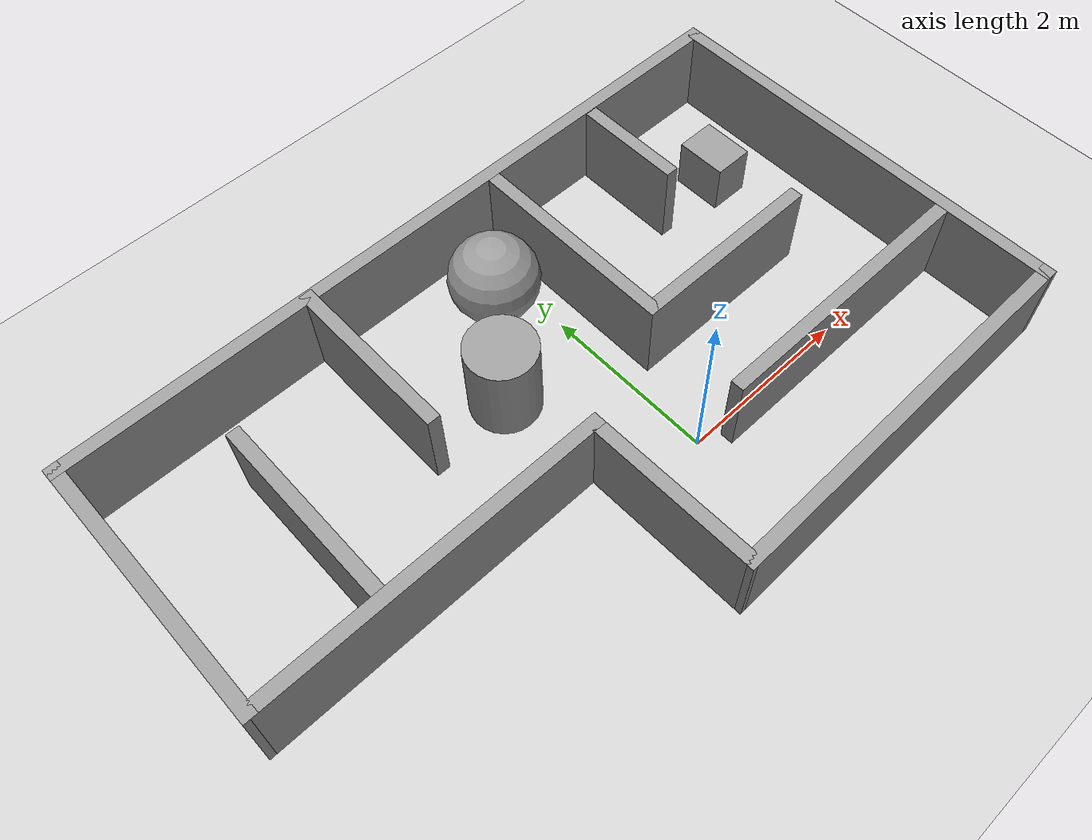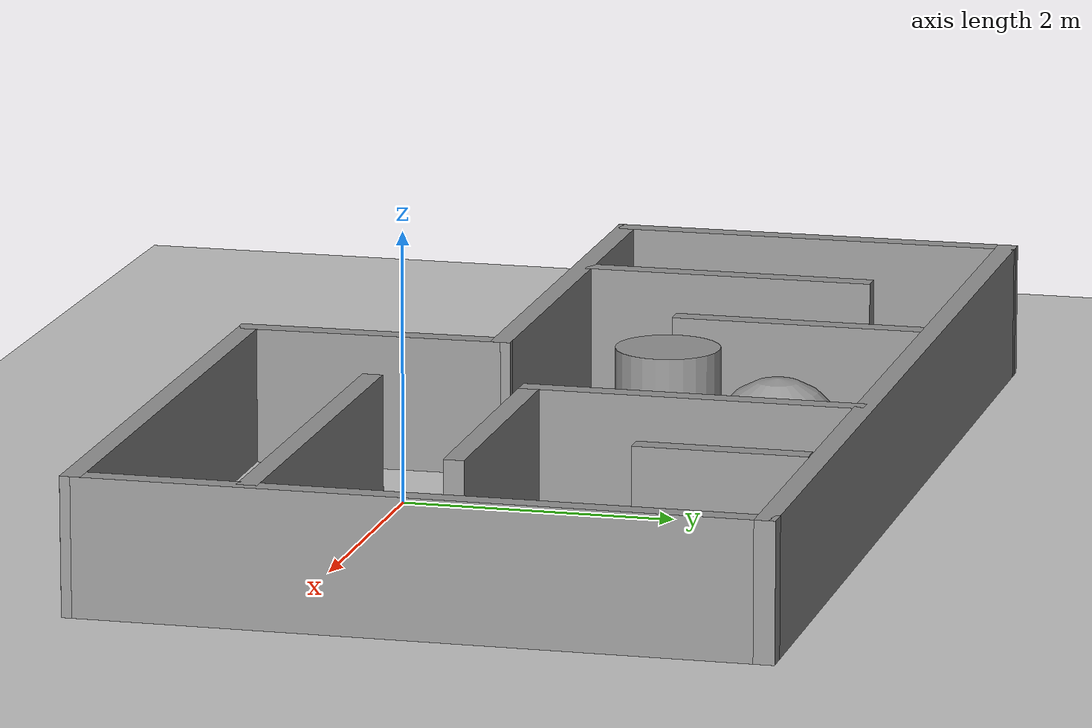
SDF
<sdf version="1.7">
 <world name="default">
  <scene><ambient>0.4 0.4 0.4 1</ambient><background>0.7 0.7 0.7 1</background><shadows>1</shadows></scene>
  <light name="sun" type="directional">
   <pose>0 0 10 0 -0 0</pose>
   <diffuse>0.8 0.8 0.8 1</diffuse>
   <specular>0.2 0.2 0.2 1</specular>
   <attenuation>
    <range>1000</range>
    <constant>0.9</constant>
    <linear>0.01</linear>
    <quadratic>0.001</quadratic>
   </attenuation>
   <direction>-0.5 0.1 -0.9</direction>
   <spot><inner_angle>0</inner_angle><outer_angle>0</outer_angle><falloff>0</falloff></spot>
  </light>
  <model name="ground_plane">
   <static>1</static>
   <link name="link">
    <collision name="collision">
     <geometry><plane><normal>0 0 1</normal><size>100 100</size></plane></geometry>
     <surface>
      <contact><collide_bitmask>65535</collide_bitmask></contact>
      <friction><ode><mu>100</mu><mu2>50</mu2></ode></friction>
     </surface>
    </collision>
    <visual name="visual">
     <cast_shadows>0</cast_shadows>
     <geometry><plane><normal>0 0 1</normal><size>100 100</size></plane></geometry>
     <material>
      <script><uri>file://media/materials/scripts/gazebo.material</uri><name>Gazebo/Grey</name></script>
     </material>
    </visual>
   </link>
  </model>
  <physics type="ode">
   <real_time_update_rate>1000</real_time_update_rate>
   <max_step_size>0.001</max_step_size>
   <real_time_factor>1</real_time_factor>
   <ode>
    <solver>
     <type>quick</type>
     <iters>150</iters>
     <precon_iters>0</precon_iters>
     <sor>1.4</sor>
     <use_dynamic_moi_rescaling>1</use_dynamic_moi_rescaling>
    </solver>
    <constraints>
     <cfm>1e-05</cfm>
     <erp>0.2</erp>
     <contact_max_correcting_vel>2000</contact_max_correcting_vel>
     <contact_surface_layer>0.01</contact_surface_layer>
    </constraints>
   </ode>
  </physics>
  <gravity>0 0 -9.8</gravity>
  <magnetic_field>6e-06 2.3e-05 -4.2e-05</magnetic_field>
  <atmosphere type="adiabatic"/>
  <spherical_coordinates>
   <surface_model>EARTH_WGS84</surface_model>
   <latitude_deg>0</latitude_deg>
   <longitude_deg>0</longitude_deg>
   <elevation>0</elevation>
   <heading_deg>0</heading_deg>
  </spherical_coordinates>
  <model name="maze1">
   <pose>-0.67482 1.01701 0 0 -0 0</pose>
   <link name="Wall_10">
    <collision name="Wall_10_Collision">
     <geometry><box><size>4 0.15 1</size></box></geometry>
     <pose>0 0 0.5 0 -0 0</pose>
    </collision>
    <visual name="Wall_10_Visual">
     <pose>0 0 0.5 0 -0 0</pose>
     <geometry><box><size>4 0.15 1</size></box></geometry>
     <material>
      <script><uri>file://media/materials/scripts/gazebo.material</uri><name>Gazebo/Grey</name></script>
      <ambient>1 1 1 1</ambient>
     </material>
     <meta><layer>0</layer></meta>
    </visual>
    <pose>-2.24118 -0.535012 0 0 -0 0</pose>
   </link>
   <link name="Wall_11">
    <collision name="Wall_11_Collision">
     <geometry><box><size>2.05688 0.15 1</size></box></geometry>
     <pose>0 0 0.5 0 -0 0</pose>
    </collision>
    <visual name="Wall_11_Visual">
     <pose>0 0 0.5 0 -0 0</pose>
     <geometry><box><size>2.05688 0.15 1</size></box></geometry>
     <material>
      <script><uri>file://media/materials/scripts/gazebo.material</uri><name>Gazebo/Grey</name></script>
      <ambient>1 1 1 1</ambient>
     </material>
     <meta><layer>0</layer></meta>
    </visual>
    <pose>-0.29768 -1.48851 0 0 -0 -1.5514</pose>
   </link>
   <link name="Wall_13">
    <collision name="Wall_13_Collision">
     <geometry><box><size>2.25 0.15 1</size></box></geometry>
     <pose>0 0 0.5 0 -0 0</pose>
    </collision>
    <visual name="Wall_13_Visual">
     <pose>0 0 0.5 0 -0 0</pose>
     <geometry><box><size>2.25 0.15 1</size></box></geometry>
     <material>
      <script><uri>file://media/materials/scripts/gazebo.material</uri><name>Gazebo/Grey</name></script>
      <ambient>1 1 1 1</ambient>
     </material>
     <meta><layer>0</layer></meta>
    </visual>
    <pose>-2.78018 0.564988 0 0 -0 1.5708</pose>
   </link>
   <link name="Wall_15">
    <collision name="Wall_15_Collision">
     <geometry><box><size>2.5 0.15 1</size></box></geometry>
     <pose>0 0 0.5 0 -0 0</pose>
    </collision>
    <visual name="Wall_15_Visual">
     <pose>0 0 0.5 0 -0 0</pose>
     <geometry><box><size>2.5 0.15 1</size></box></geometry>
     <material>
      <script><uri>file://media/materials/scripts/gazebo.material</uri><name>Gazebo/Grey</name></script>
      <ambient>1 1 1 1</ambient>
     </material>
     <meta><layer>0</layer></meta>
    </visual>
    <pose>1.00182 1.18899 0 0 -0 -1.5708</pose>
   </link>
   <link name="Wall_16">
    <collision name="Wall_16_Collision">
     <geometry><box><size>2.25 0.15 1</size></box></geometry>
     <pose>0 0 0.5 0 -0 0</pose>
    </collision>
    <visual name="Wall_16_Visual">
     <pose>0 0 0.5 0 -0 0</pose>
     <geometry><box><size>2.25 0.15 1</size></box></geometry>
     <material>
      <script><uri>file://media/materials/scripts/gazebo.material</uri><name>Gazebo/Grey</name></script>
      <ambient>1 1 1 1</ambient>
     </material>
     <meta><layer>0</layer></meta>
    </visual>
    <pose>2.05182 0.013988 0 0 -0 0</pose>
   </link>
   <link name="Wall_19">
    <collision name="Wall_19_Collision">
     <geometry><box><size>2 0.15 1</size></box></geometry>
     <pose>0 0 0.5 0 -0 0</pose>
    </collision>
    <visual name="Wall_19_Visual">
     <pose>0 0 0.5 0 -0 0</pose>
     <geometry><box><size>2 0.15 1</size></box></geometry>
     <material>
      <script><uri>file://media/materials/scripts/gazebo.material</uri><name>Gazebo/Grey</name></script>
      <ambient>1 1 1 1</ambient>
     </material>
     <meta><layer>0</layer></meta>
    </visual>
    <pose>-1.37218 1.49999 0 0 -0 -1.5708</pose>
   </link>
   <link name="Wall_22">
    <collision name="Wall_22_Collision">
     <geometry><box><size>3.25 0.15 1</size></box></geometry>
     <pose>0 0 0.5 0 -0 0</pose>
    </collision>
    <visual name="Wall_22_Visual">
     <pose>0 0 0.5 0 -0 0</pose>
     <geometry><box><size>3.25 0.15 1</size></box></geometry>
     <material>
      <script><uri>file://media/materials/scripts/gazebo.material</uri><name>Gazebo/Grey</name></script>
      <ambient>1 1 1 1</ambient>
     </material>
     <meta><layer>0</layer></meta>
    </visual>
    <pose>2.54882 -1.17601 0 0 -0 3.14159</pose>
   </link>
   <link name="Wall_24">
    <collision name="Wall_24_Collision">
     <geometry><box><size>1.25 0.15 1</size></box></geometry>
     <pose>0 0 0.5 0 -0 0</pose>
    </collision>
    <visual name="Wall_24_Visual">
     <pose>0 0 0.5 0 -0 0</pose>
     <geometry><box><size>1.25 0.15 1</size></box></geometry>
     <material>
      <script><uri>file://media/materials/scripts/gazebo.material</uri><name>Gazebo/Grey</name></script>
      <ambient>1 1 1 1</ambient>
     </material>
     <meta><layer>0</layer></meta>
    </visual>
    <pose>2.42982 1.73399 0 0 -0 -1.5708</pose>
   </link>
   <link name="Wall_4">
    <collision name="Wall_4_Collision">
     <geometry><box><size>4.60414 0.15 1</size></box></geometry>
     <pose>0 0 0.5 0 -0 0</pose>
    </collision>
    <visual name="Wall_4_Visual">
     <pose>0 0 0.5 0 -0 0</pose>
     <geometry><box><size>4.60414 0.15 1</size></box></geometry>
     <material>
      <script><uri>file://media/materials/scripts/gazebo.material</uri><name>Gazebo/Grey</name></script>
      <ambient>1 1 1 1</ambient>
     </material>
     <meta><layer>0</layer></meta>
    </visual>
    <pose>1.94782 -2.42451 0 0 -0 0.007858</pose>
   </link>
   <link name="Wall_7">
    <collision name="Wall_7_Collision">
     <geometry><box><size>5 0.15 1</size></box></geometry>
     <pose>0 0 0.5 0 -0 0</pose>
    </collision>
    <visual name="Wall_7_Visual">
     <pose>0 0 0.5 0 -0 0</pose>
     <geometry><box><size>5 0.15 1</size></box></geometry>
     <material>
      <script><uri>file://media/materials/scripts/gazebo.material</uri><name>Gazebo/Grey</name></script>
      <ambient>1 1 1 1</ambient>
     </material>
     <meta><layer>0</layer></meta>
    </visual>
    <pose>4.17482 0.017988 0 0 -0 1.5708</pose>
   </link>
   <link name="Wall_8">
    <collision name="Wall_8_Collision">
     <geometry><box><size>8.5 0.15 1</size></box></geometry>
     <pose>0 0 0.5 0 -0 0</pose>
    </collision>
    <visual name="Wall_8_Visual">
     <pose>0 0 0.5 0 -0 0</pose>
     <geometry><box><size>8.5 0.15 1</size></box></geometry>
     <material>
      <script><uri>file://media/materials/scripts/gazebo.material</uri><name>Gazebo/Grey</name></script>
      <ambient>1 1 1 1</ambient>
     </material>
     <meta><layer>0</layer></meta>
    </visual>
    <pose>-0.00018 2.44299 0 0 -0 3.14159</pose>
   </link>
   <link name="Wall_9">
    <collision name="Wall_9_Collision">
     <geometry><box><size>3.12801 0.15 1</size></box></geometry>
     <pose>0 0 0.5 0 -0 0</pose>
    </collision>
    <visual name="Wall_9_Visual">
     <pose>0 0 0.5 0 -0 0</pose>
     <geometry><box><size>3.12801 0.15 1</size></box></geometry>
     <material>
      <script><uri>file://media/materials/scripts/gazebo.material</uri><name>Gazebo/Grey</name></script>
      <ambient>1 1 1 1</ambient>
     </material>
     <meta><layer>0</layer></meta>
    </visual>
    <pose>-4.17068 0.953988 0 0 -0 -1.56777</pose>
   </link>
   <static>1</static>
  </model>
  <model name="unit_sphere">
   <pose>-0.328393 2.68171 0.5 0 -0 0</pose>
   <link name="link">
    <inertial>
     <mass>1</mass>
     <inertia><ixx>0.1</ixx><ixy>0</ixy><ixz>0</ixz><iyy>0.1</iyy><iyz>0</iyz><izz>0.1</izz></inertia>
    </inertial>
    <collision name="collision"><geometry><sphere><radius>0.5</radius></sphere></geometry></collision>
    <visual name="visual">
     <geometry><sphere><radius>0.5</radius></sphere></geometry>
     <material>
      <script><name>Gazebo/Grey</name><uri>file://media/materials/scripts/gazebo.material</uri></script>
     </material>
    </visual>
   </link>
  </model>
  <model name="unit_cylinder">
   <pose>-1.06672 1.70084 0.499998 0 0 -7.8e-05</pose>
   <link name="link">
    <inertial>
     <mass>1</mass>
     <inertia><ixx>0.145833</ixx><ixy>0</ixy><ixz>0</ixz><iyy>0.145833</iyy><iyz>0</iyz><izz>0.125</izz></inertia>
    </inertial>
    <collision name="collision">
     <geometry><cylinder><radius>0.385843</radius><length>1</length></cylinder></geometry>
    </collision>
    <visual name="visual">
     <geometry><cylinder><radius>0.385843</radius><length>1</length></cylinder></geometry>
     <material>
      <script><name>Gazebo/Grey</name><uri>file://media/materials/scripts/gazebo.material</uri></script>
     </material>
    </visual>
   </link>
  </model>
  <model name="unit_box">
   <pose>2.6406 2.28185 0.300023 0 -0 0</pose>
   <link name="link">
    <inertial>
     <mass>1</mass>
     <inertia>
      <ixx>0.166667</ixx>
      <ixy>0</ixy>
      <ixz>0</ixz>
      <iyy>0.166667</iyy>
      <iyz>0</iyz>
      <izz>0.166667</izz>
     </inertia>
    </inertial>
    <collision name="collision">
     <geometry><box><size>0.460043 0.592466 0.600046</size></box></geometry>
    </collision>
    <visual name="visual">
     <geometry><box><size>0.460043 0.592466 0.600046</size></box></geometry>
     <material>
      <script><name>Gazebo/Grey</name><uri>file://media/materials/scripts/gazebo.material</uri></script>
     </material>
    </visual>
   </link>
  </model>
 </world>
</sdf>
